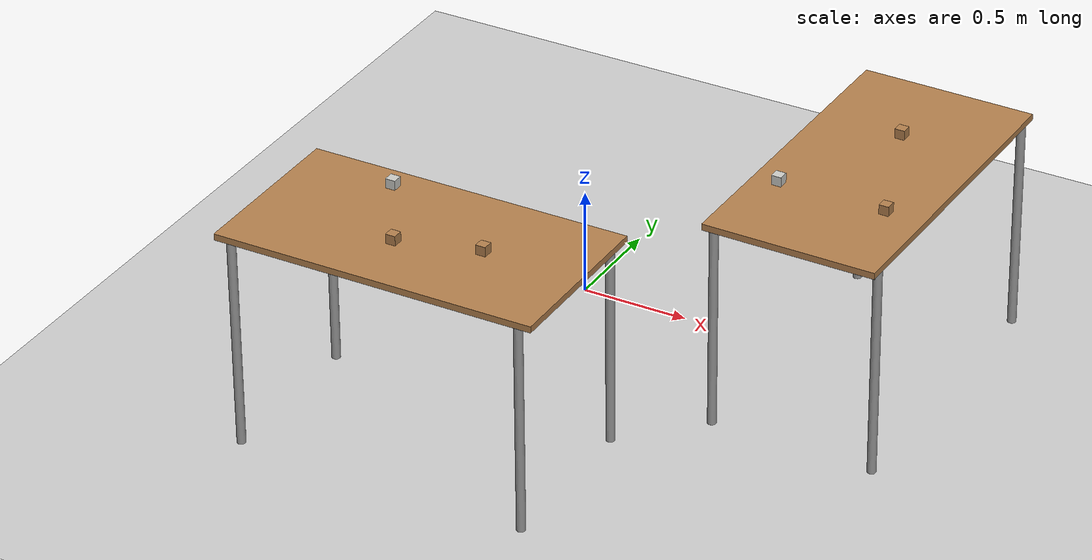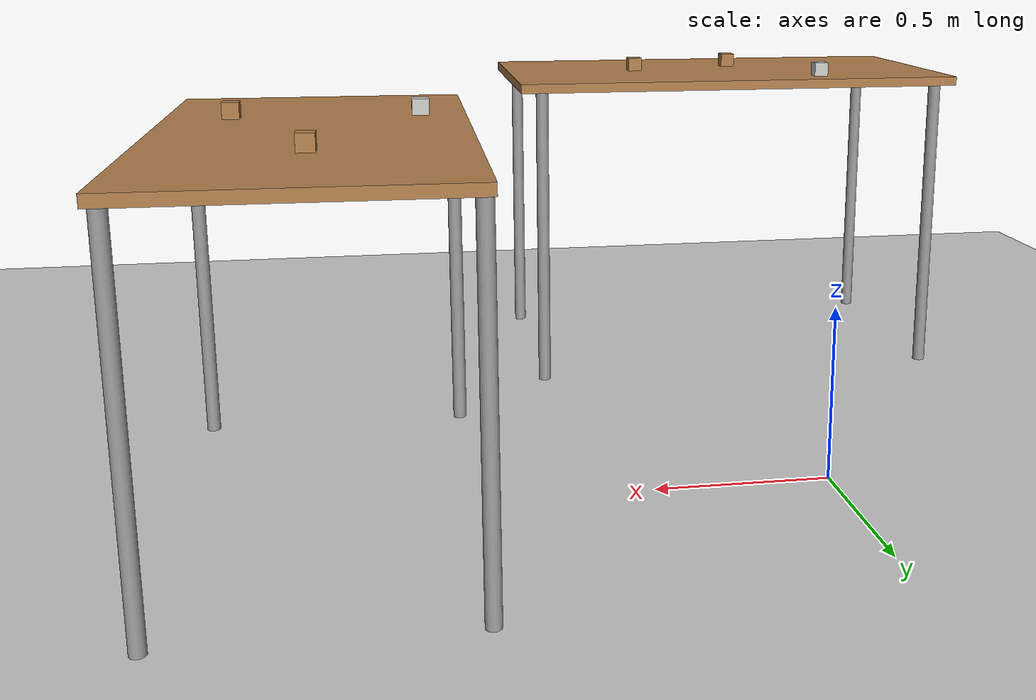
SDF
<sdf version="1.6">
 <world name="default">
  <gravity>0 0 -9.81</gravity>
  <physics name="default_physics" default="0" type="ode">
   <max_step_size>0.001</max_step_size>
   <real_time_factor>1</real_time_factor>
   <real_time_update_rate>1000</real_time_update_rate>
  </physics>
  <scene><ambient>0.4 0.4 0.4 1</ambient><background>0.7 0.7 0.7 1</background><shadows>1</shadows></scene>
  <light name="sun" type="directional">
   <pose>0 0 10 0 -0 0</pose>
   <diffuse>0.8 0.8 0.8 1</diffuse>
   <specular>0.2 0.2 0.2 1</specular>
   <attenuation>
    <range>1000</range>
    <constant>0.9</constant>
    <linear>0.01</linear>
    <quadratic>0.001</quadratic>
   </attenuation>
   <direction>-0.5 0.1 -0.9</direction>
  </light>
  <model name="ground_plane">
   <static>1</static>
   <link name="link">
    <collision name="collision">
     <geometry><plane><normal>0 0 1</normal><size>100 100</size></plane></geometry>
     <surface><friction><ode><mu>100</mu><mu2>50</mu2></ode></friction></surface>
    </collision>
    <visual name="visual">
     <cast_shadows>0</cast_shadows>
     <geometry><plane><normal>0 0 1</normal><size>100 100</size></plane></geometry>
     <material>
      <script><uri>file://media/materials/scripts/gazebo.material</uri><name>Gazebo/Grey</name></script>
     </material>
    </visual>
   </link>
  </model>
  <model name="table">
   <static>1</static>
   <link name="link">
    <collision name="surface">
     <pose>0 0 1 0 -0 0</pose>
     <geometry><box><size>1.5 0.8 0.03</size></box></geometry>
     <surface><friction><ode><mu>0.6</mu><mu2>0.6</mu2></ode></friction></surface>
    </collision>
    <visual name="visual1">
     <pose>0 0 1 0 -0 0</pose>
     <geometry><box><size>1.5 0.8 0.03</size></box></geometry>
     <material>
      <script><uri>file://media/materials/scripts/gazebo.material</uri><name>Gazebo/Wood</name></script>
     </material>
    </visual>
    <collision name="front_left_leg">
     <pose>0.68 0.38 0.5 0 -0 0</pose>
     <geometry><cylinder><radius>0.02</radius><length>1</length></cylinder></geometry>
    </collision>
    <visual name="front_left_leg">
     <pose>0.68 0.38 0.5 0 -0 0</pose>
     <geometry><cylinder><radius>0.02</radius><length>1</length></cylinder></geometry>
     <material>
      <script><uri>file://media/materials/scripts/gazebo.material</uri><name>Gazebo/Grey</name></script>
     </material>
    </visual>
    <collision name="front_right_leg">
     <pose>0.68 -0.38 0.5 0 -0 0</pose>
     <geometry><cylinder><radius>0.02</radius><length>1</length></cylinder></geometry>
    </collision>
    <visual name="front_right_leg">
     <pose>0.68 -0.38 0.5 0 -0 0</pose>
     <geometry><cylinder><radius>0.02</radius><length>1</length></cylinder></geometry>
     <material>
      <script><uri>file://media/materials/scripts/gazebo.material</uri><name>Gazebo/Grey</name></script>
     </material>
    </visual>
    <collision name="back_right_leg">
     <pose>-0.68 -0.38 0.5 0 -0 0</pose>
     <geometry><cylinder><radius>0.02</radius><length>1</length></cylinder></geometry>
    </collision>
    <visual name="back_right_leg">
     <pose>-0.68 -0.38 0.5 0 -0 0</pose>
     <geometry><cylinder><radius>0.02</radius><length>1</length></cylinder></geometry>
     <material>
      <script><uri>file://media/materials/scripts/gazebo.material</uri><name>Gazebo/Grey</name></script>
     </material>
    </visual>
    <collision name="back_left_leg">
     <pose>-0.68 0.38 0.5 0 -0 0</pose>
     <geometry><cylinder><radius>0.02</radius><length>1</length></cylinder></geometry>
    </collision>
    <visual name="back_left_leg">
     <pose>-0.68 0.38 0.5 0 -0 0</pose>
     <geometry><cylinder><radius>0.02</radius><length>1</length></cylinder></geometry>
     <material>
      <script><uri>file://media/materials/scripts/gazebo.material</uri><name>Gazebo/Grey</name></script>
     </material>
    </visual>
   </link>
   <pose>0 -1.38 0 0 0 -3.14</pose>
  </model>
  <model name="cube1">
   <pose>0.3 -1.38 1.012 0 -0 1.56</pose>
   <link name="link">
    <pose>0 0 0.025 0 -0 0</pose>
    <inertial>
     <mass>0.0565</mass>
     <inertia>
      <ixx>2.35417e-05</ixx>
      <ixy>0</ixy>
      <ixz>0</ixz>
      <iyy>2.35417e-05</iyy>
      <iyz>0</iyz>
      <izz>2.35417e-05</izz>
     </inertia>
    </inertial>
    <collision name="collision">
     <geometry><box><size>0.046 0.046 0.046</size></box></geometry>
     <surface>
      <contact>
       <poissons_ratio>0.347</poissons_ratio>
       <elastic_modulus>8.8e+09</elastic_modulus>
       <ode><kp>100000</kp><kd>1</kd><max_vel>1</max_vel><min_depth>0.001</min_depth></ode>
      </contact>
      <friction>
       <torsional>
        <coefficient>10</coefficient>
        <use_patch_radius>0</use_patch_radius>
        <surface_radius>0.05</surface_radius>
       </torsional>
      </friction>
     </surface>
    </collision>
    <visual name="visual">
     <geometry><box><size>0.046 0.046 0.046</size></box></geometry>
     <material>
      <script><uri>file://media/materials/scripts/gazebo.material</uri><name>Gazebo/Wood</name></script>
     </material>
    </visual>
   </link>
  </model>
  <model name="cube2">
   <pose>-0.3 -1.1 1.012 0 -0 1.56</pose>
   <link name="link">
    <pose>0 0 0.025 0 -0 0</pose>
    <inertial>
     <mass>0.0565</mass>
     <inertia>
      <ixx>2.35417e-05</ixx>
      <ixy>0</ixy>
      <ixz>0</ixz>
      <iyy>2.35417e-05</iyy>
      <iyz>0</iyz>
      <izz>2.35417e-05</izz>
     </inertia>
    </inertial>
    <collision name="collision">
     <geometry><box><size>0.046 0.046 0.046</size></box></geometry>
     <surface>
      <contact>
       <poissons_ratio>0.347</poissons_ratio>
       <elastic_modulus>8.8e+09</elastic_modulus>
       <ode><kp>100000</kp><kd>1</kd><max_vel>1</max_vel><min_depth>0.001</min_depth></ode>
      </contact>
      <friction>
       <torsional>
        <coefficient>1</coefficient>
        <use_patch_radius>0</use_patch_radius>
        <surface_radius>0.05</surface_radius>
       </torsional>
      </friction>
     </surface>
    </collision>
    <visual name="visual">
     <geometry><box><size>0.046 0.046 0.046</size></box></geometry>
     <material>
      <script><uri>file://media/materials/scripts/gazebo.material</uri><name>Gazebo/CeilingTiled</name></script>
     </material>
    </visual>
   </link>
  </model>
  <model name="cube3">
   <pose>-0.067508 -1.48308 1.012 0 -0 1.56</pose>
   <link name="link">
    <pose>0 0 0.025 0 -0 0</pose>
    <inertial>
     <mass>0.0565</mass>
     <inertia>
      <ixx>2.35417e-05</ixx>
      <ixy>0</ixy>
      <ixz>0</ixz>
      <iyy>2.35417e-05</iyy>
      <iyz>0</iyz>
      <izz>2.35417e-05</izz>
     </inertia>
    </inertial>
    <collision name="collision">
     <geometry><box><size>0.046 0.046 0.046</size></box></geometry>
     <surface>
      <contact>
       <poissons_ratio>0.347</poissons_ratio>
       <elastic_modulus>8.8e+09</elastic_modulus>
       <ode><kp>100000</kp><kd>1</kd><max_vel>1</max_vel><min_depth>0.001</min_depth></ode>
      </contact>
      <friction>
       <torsional>
        <coefficient>1</coefficient>
        <use_patch_radius>0</use_patch_radius>
        <surface_radius>0.05</surface_radius>
       </torsional>
      </friction>
     </surface>
    </collision>
    <visual name="visual">
     <geometry><box><size>0.046 0.046 0.046</size></box></geometry>
     <material>
      <script><uri>file://media/materials/scripts/gazebo.material</uri><name>Gazebo/WoodPallet</name></script>
     </material>
    </visual>
   </link>
  </model>
  <model name="table_0">
   <static>1</static>
   <link name="link">
    <collision name="surface">
     <pose>0 0 1 0 -0 0</pose>
     <geometry><box><size>1.5 0.8 0.03</size></box></geometry>
     <surface><friction><ode><mu>0.6</mu><mu2>0.6</mu2></ode></friction></surface>
    </collision>
    <visual name="visual1">
     <pose>0 0 1 0 -0 0</pose>
     <geometry><box><size>1.5 0.8 0.03</size></box></geometry>
     <material>
      <script><uri>file://media/materials/scripts/gazebo.material</uri><name>Gazebo/Wood</name></script>
     </material>
    </visual>
    <collision name="front_left_leg">
     <pose>0.68 0.38 0.5 0 -0 0</pose>
     <geometry><cylinder><radius>0.02</radius><length>1</length></cylinder></geometry>
    </collision>
    <visual name="front_left_leg">
     <pose>0.68 0.38 0.5 0 -0 0</pose>
     <geometry><cylinder><radius>0.02</radius><length>1</length></cylinder></geometry>
     <material>
      <script><uri>file://media/materials/scripts/gazebo.material</uri><name>Gazebo/Grey</name></script>
     </material>
    </visual>
    <collision name="front_right_leg">
     <pose>0.68 -0.38 0.5 0 -0 0</pose>
     <geometry><cylinder><radius>0.02</radius><length>1</length></cylinder></geometry>
    </collision>
    <visual name="front_right_leg">
     <pose>0.68 -0.38 0.5 0 -0 0</pose>
     <geometry><cylinder><radius>0.02</radius><length>1</length></cylinder></geometry>
     <material>
      <script><uri>file://media/materials/scripts/gazebo.material</uri><name>Gazebo/Grey</name></script>
     </material>
    </visual>
    <collision name="back_right_leg">
     <pose>-0.68 -0.38 0.5 0 -0 0</pose>
     <geometry><cylinder><radius>0.02</radius><length>1</length></cylinder></geometry>
    </collision>
    <visual name="back_right_leg">
     <pose>-0.68 -0.38 0.5 0 -0 0</pose>
     <geometry><cylinder><radius>0.02</radius><length>1</length></cylinder></geometry>
     <material>
      <script><uri>file://media/materials/scripts/gazebo.material</uri><name>Gazebo/Grey</name></script>
     </material>
    </visual>
    <collision name="back_left_leg">
     <pose>-0.68 0.38 0.5 0 -0 0</pose>
     <geometry><cylinder><radius>0.02</radius><length>1</length></cylinder></geometry>
    </collision>
    <visual name="back_left_leg">
     <pose>-0.68 0.38 0.5 0 -0 0</pose>
     <geometry><cylinder><radius>0.02</radius><length>1</length></cylinder></geometry>
     <material>
      <script><uri>file://media/materials/scripts/gazebo.material</uri><name>Gazebo/Grey</name></script>
     </material>
    </visual>
   </link>
   <pose>1.38 0 0 0 -0 1.56</pose>
  </model>
  <model name="cube4">
   <pose>1.38 0.3 1.012 0 -0 1.56</pose>
   <link name="link">
    <pose>0 0 0.025 0 -0 0</pose>
    <inertial>
     <mass>0.0565</mass>
     <inertia>
      <ixx>2.35417e-05</ixx>
      <ixy>0</ixy>
      <ixz>0</ixz>
      <iyy>2.35417e-05</iyy>
      <iyz>0</iyz>
      <izz>2.35417e-05</izz>
     </inertia>
    </inertial>
    <collision name="collision">
     <geometry><box><size>0.046 0.046 0.046</size></box></geometry>
     <surface>
      <contact>
       <poissons_ratio>0.347</poissons_ratio>
       <elastic_modulus>8.8e+09</elastic_modulus>
       <ode><kp>100000</kp><kd>1</kd><max_vel>1</max_vel><min_depth>0.001</min_depth></ode>
      </contact>
      <friction>
       <torsional>
        <coefficient>10</coefficient>
        <use_patch_radius>0</use_patch_radius>
        <surface_radius>0.05</surface_radius>
       </torsional>
      </friction>
     </surface>
    </collision>
    <visual name="visual">
     <geometry><box><size>0.046 0.046 0.046</size></box></geometry>
     <material>
      <script><uri>file://media/materials/scripts/gazebo.material</uri><name>Gazebo/Wood</name></script>
     </material>
    </visual>
   </link>
  </model>
  <model name="cube5">
   <pose>1.1 -0.3 1.012 0 -0 1.56</pose>
   <link name="link">
    <pose>0 0 0.025 0 -0 0</pose>
    <inertial>
     <mass>0.0565</mass>
     <inertia>
      <ixx>2.35417e-05</ixx>
      <ixy>0</ixy>
      <ixz>0</ixz>
      <iyy>2.35417e-05</iyy>
      <iyz>0</iyz>
      <izz>2.35417e-05</izz>
     </inertia>
    </inertial>
    <collision name="collision">
     <geometry><box><size>0.046 0.046 0.046</size></box></geometry>
     <surface>
      <contact>
       <poissons_ratio>0.347</poissons_ratio>
       <elastic_modulus>8.8e+09</elastic_modulus>
       <ode><kp>100000</kp><kd>1</kd><max_vel>1</max_vel><min_depth>0.001</min_depth></ode>
      </contact>
      <friction>
       <torsional>
        <coefficient>1</coefficient>
        <use_patch_radius>0</use_patch_radius>
        <surface_radius>0.05</surface_radius>
       </torsional>
      </friction>
     </surface>
    </collision>
    <visual name="visual">
     <geometry><box><size>0.046 0.046 0.046</size></box></geometry>
     <material>
      <script><uri>file://media/materials/scripts/gazebo.material</uri><name>Gazebo/CeilingTiled</name></script>
     </material>
    </visual>
   </link>
  </model>
  <model name="cube6">
   <pose>1.6 -0.3 1.012 0 -0 1.56</pose>
   <link name="link">
    <pose>0 0 0.025 0 -0 0</pose>
    <inertial>
     <mass>0.0565</mass>
     <inertia>
      <ixx>2.35417e-05</ixx>
      <ixy>0</ixy>
      <ixz>0</ixz>
      <iyy>2.35417e-05</iyy>
      <iyz>0</iyz>
      <izz>2.35417e-05</izz>
     </inertia>
    </inertial>
    <collision name="collision">
     <geometry><box><size>0.046 0.046 0.046</size></box></geometry>
     <surface>
      <contact>
       <poissons_ratio>0.347</poissons_ratio>
       <elastic_modulus>8.8e+09</elastic_modulus>
       <ode><kp>100000</kp><kd>1</kd><max_vel>1</max_vel><min_depth>0.001</min_depth></ode>
      </contact>
      <friction>
       <torsional>
        <coefficient>1</coefficient>
        <use_patch_radius>0</use_patch_radius>
        <surface_radius>0.05</surface_radius>
       </torsional>
      </friction>
     </surface>
    </collision>
    <visual name="visual">
     <geometry><box><size>0.046 0.046 0.046</size></box></geometry>
     <material>
      <script><uri>file://media/materials/scripts/gazebo.material</uri><name>Gazebo/WoodPallet</name></script>
     </material>
    </visual>
   </link>
  </model>
  <magnetic_field>6e-06 2.3e-05 -4.2e-05</magnetic_field>
  <atmosphere type="adiabatic"/>
  <spherical_coordinates>
   <surface_model>EARTH_WGS84</surface_model>
   <latitude_deg>0</latitude_deg>
   <longitude_deg>0</longitude_deg>
   <elevation>0</elevation>
   <heading_deg>0</heading_deg>
  </spherical_coordinates>
 </world>
</sdf>
